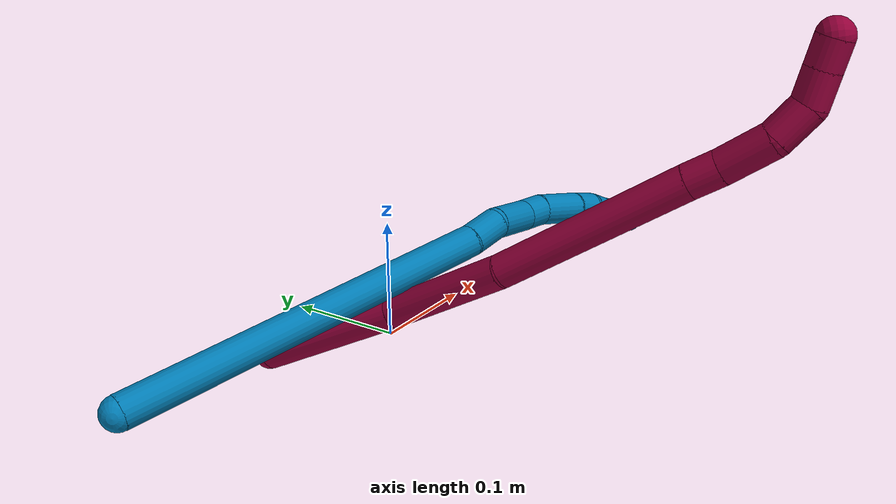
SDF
<sdf version="1.7">
 <world name="default">
  <model name="8">
   <static>0</static>
   <link name="8">
    <collision name="collision-cylinder-e_1_1_4">
     <pose>0.007901 -0.018923 0.056014 0.325794 0.132845 0.021865</pose>
     <geometry><cylinder><radius>0.0125</radius><length>0.119299</length></cylinder></geometry>
     <surface>
      <friction><ode><mu>1.16</mu><mu2>1.16</mu2><slip1>0</slip1><slip2>0</slip2></ode></friction>
      <contact><ode><kp>1e+06</kp><kd>1</kd><max_vel>0</max_vel><min_depth>0.001</min_depth></ode></contact>
     </surface>
    </collision>
    <visual name="visual-cylinder-e_1_1_4">
     <pose>0.007901 -0.018923 0.056014 0.325794 0.132845 0.021865</pose>
     <geometry><cylinder><radius>0.0125</radius><length>0.119299</length></cylinder></geometry>
     <material><ambient>0.584314 0 0.227451 1</ambient></material>
    </visual>
    <collision name="collision-cylinder-e_2_4_5">
     <pose>0.027688 -0.058317 0.157578 0.422361 0.233661 0.05031</pose>
     <geometry><cylinder><radius>0.0125</radius><length>0.102668</length></cylinder></geometry>
     <surface>
      <friction><ode><mu>1.16</mu><mu2>1.16</mu2><slip1>0</slip1><slip2>0</slip2></ode></friction>
      <contact><ode><kp>1e+06</kp><kd>1</kd><max_vel>0</max_vel><min_depth>0.001</min_depth></ode></contact>
     </surface>
    </collision>
    <visual name="visual-cylinder-e_2_4_5">
     <pose>0.027688 -0.058317 0.157578 0.422361 0.233661 0.05031</pose>
     <geometry><cylinder><radius>0.0125</radius><length>0.102668</length></cylinder></geometry>
     <material><ambient>0.584314 0 0.227451 1</ambient></material>
    </visual>
    <collision name="collision-cylinder-e_3_5_6">
     <pose>0.043498 -0.107573 0.269614 0.408588 0.054116 0.011215</pose>
     <geometry><cylinder><radius>0.0125</radius><length>0.14511</length></cylinder></geometry>
     <surface>
      <friction><ode><mu>1.16</mu><mu2>1.16</mu2><slip1>0</slip1><slip2>0</slip2></ode></friction>
      <contact><ode><kp>1e+06</kp><kd>1</kd><max_vel>0</max_vel><min_depth>0.001</min_depth></ode></contact>
     </surface>
    </collision>
    <visual name="visual-cylinder-e_3_5_6">
     <pose>0.043498 -0.107573 0.269614 0.408588 0.054116 0.011215</pose>
     <geometry><cylinder><radius>0.0125</radius><length>0.14511</length></cylinder></geometry>
     <material><ambient>0.584314 0 0.227451 1</ambient></material>
    </visual>
    <collision name="collision-cylinder-e_4_6_7">
     <pose>0.048104 -0.140594 0.346813 0.376504 0.05911 0.011264</pose>
     <geometry><cylinder><radius>0.0125</radius><length>0.023083</length></cylinder></geometry>
     <surface>
      <friction><ode><mu>1.16</mu><mu2>1.16</mu2><slip1>0</slip1><slip2>0</slip2></ode></friction>
      <contact><ode><kp>1e+06</kp><kd>1</kd><max_vel>0</max_vel><min_depth>0.001</min_depth></ode></contact>
     </surface>
    </collision>
    <visual name="visual-cylinder-e_4_6_7">
     <pose>0.048104 -0.140594 0.346813 0.376504 0.05911 0.011264</pose>
     <geometry><cylinder><radius>0.0125</radius><length>0.023083</length></cylinder></geometry>
     <material><ambient>0.584314 0 0.227451 1</ambient></material>
    </visual>
    <collision name="collision-cylinder-e_5_7_8">
     <pose>0.050901 -0.153466 0.374109 0.48015 0.11264 0.027601</pose>
     <geometry><cylinder><radius>0.0125</radius><length>0.03763</length></cylinder></geometry>
     <surface>
      <friction><ode><mu>1.16</mu><mu2>1.16</mu2><slip1>0</slip1><slip2>0</slip2></ode></friction>
      <contact><ode><kp>1e+06</kp><kd>1</kd><max_vel>0</max_vel><min_depth>0.001</min_depth></ode></contact>
     </surface>
    </collision>
    <visual name="visual-cylinder-e_5_7_8">
     <pose>0.050901 -0.153466 0.374109 0.48015 0.11264 0.027601</pose>
     <geometry><cylinder><radius>0.0125</radius><length>0.03763</length></cylinder></geometry>
     <material><ambient>0.584314 0 0.227451 1</ambient></material>
    </visual>
    <collision name="collision-cylinder-e_6_8_9">
     <pose>0.050524 -0.170542 0.4016 0.658469 -0.17871 -0.061204</pose>
     <geometry><cylinder><radius>0.0125</radius><length>0.028032</length></cylinder></geometry>
     <surface>
      <friction><ode><mu>1.16</mu><mu2>1.16</mu2><slip1>0</slip1><slip2>0</slip2></ode></friction>
      <contact><ode><kp>1e+06</kp><kd>1</kd><max_vel>0</max_vel><min_depth>0.001</min_depth></ode></contact>
     </surface>
    </collision>
    <visual name="visual-cylinder-e_6_8_9">
     <pose>0.050524 -0.170542 0.4016 0.658469 -0.17871 -0.061204</pose>
     <geometry><cylinder><radius>0.0125</radius><length>0.028032</length></cylinder></geometry>
     <material><ambient>0.584314 0 0.227451 1</ambient></material>
    </visual>
    <collision name="collision-cylinder-e_7_9_10">
     <pose>0.045487 -0.189525 0.41729 1.14511 -0.216442 -0.139834</pose>
     <geometry><cylinder><radius>0.0125</radius><length>0.023706</length></cylinder></geometry>
     <surface>
      <friction><ode><mu>1.16</mu><mu2>1.16</mu2><slip1>0</slip1><slip2>0</slip2></ode></friction>
      <contact><ode><kp>1e+06</kp><kd>1</kd><max_vel>0</max_vel><min_depth>0.001</min_depth></ode></contact>
     </surface>
    </collision>
    <visual name="visual-cylinder-e_7_9_10">
     <pose>0.045487 -0.189525 0.41729 1.14511 -0.216442 -0.139834</pose>
     <geometry><cylinder><radius>0.0125</radius><length>0.023706</length></cylinder></geometry>
     <material><ambient>0.584314 0 0.227451 1</ambient></material>
    </visual>
    <collision name="collision-cylinder-e_8_10_2">
     <pose>0.041127 -0.209283 0.42614 1.15491 -0.17823 -0.116301</pose>
     <geometry><cylinder><radius>0.0125</radius><length>0.020472</length></cylinder></geometry>
     <surface>
      <friction><ode><mu>1.16</mu><mu2>1.16</mu2><slip1>0</slip1><slip2>0</slip2></ode></friction>
      <contact><ode><kp>1e+06</kp><kd>1</kd><max_vel>0</max_vel><min_depth>0.001</min_depth></ode></contact>
     </surface>
    </collision>
    <visual name="visual-cylinder-e_8_10_2">
     <pose>0.041127 -0.209283 0.42614 1.15491 -0.17823 -0.116301</pose>
     <geometry><cylinder><radius>0.0125</radius><length>0.020472</length></cylinder></geometry>
     <material><ambient>0.584314 0 0.227451 1</ambient></material>
    </visual>
    <collision name="collision-sphere-2">
     <pose>0.039312 -0.218498 0.43021 0 -0 0</pose>
     <geometry><sphere><radius>0.0125</radius></sphere></geometry>
     <surface>
      <friction><ode><mu>1.16</mu><mu2>1.16</mu2><slip1>0</slip1><slip2>0</slip2></ode></friction>
      <contact><ode><kp>1e+06</kp><kd>1</kd><max_vel>0</max_vel><min_depth>0.001</min_depth></ode></contact>
     </surface>
    </collision>
    <visual name="visual-sphere-2">
     <pose>0.039312 -0.218498 0.43021 0 -0 0</pose>
     <geometry><sphere><radius>0.0125</radius></sphere></geometry>
     <material><ambient>0.584314 0 0.227451 1</ambient></material>
    </visual>
    <collision name="collision-sphere-10">
     <pose>0.042942 -0.200068 0.42207 0 -0 0</pose>
     <geometry><sphere><radius>0.0125</radius></sphere></geometry>
     <surface>
      <friction><ode><mu>1.16</mu><mu2>1.16</mu2><slip1>0</slip1><slip2>0</slip2></ode></friction>
      <contact><ode><kp>1e+06</kp><kd>1</kd><max_vel>0</max_vel><min_depth>0.001</min_depth></ode></contact>
     </surface>
    </collision>
    <visual name="visual-sphere-10">
     <pose>0.042942 -0.200068 0.42207 0 -0 0</pose>
     <geometry><sphere><radius>0.0125</radius></sphere></geometry>
     <material><ambient>0.584314 0 0.227451 1</ambient></material>
    </visual>
    <collision name="collision-sphere-9">
     <pose>0.048033 -0.178981 0.412509 0 -0 0</pose>
     <geometry><sphere><radius>0.0125</radius></sphere></geometry>
     <surface>
      <friction><ode><mu>1.16</mu><mu2>1.16</mu2><slip1>0</slip1><slip2>0</slip2></ode></friction>
      <contact><ode><kp>1e+06</kp><kd>1</kd><max_vel>0</max_vel><min_depth>0.001</min_depth></ode></contact>
     </surface>
    </collision>
    <visual name="visual-sphere-9">
     <pose>0.048033 -0.178981 0.412509 0 -0 0</pose>
     <geometry><sphere><radius>0.0125</radius></sphere></geometry>
     <material><ambient>0.584314 0 0.227451 1</ambient></material>
    </visual>
    <collision name="collision-sphere-4">
     <pose>0.015802 -0.037847 0.112028 0 -0 0</pose>
     <geometry><sphere><radius>0.0125</radius></sphere></geometry>
     <surface>
      <friction><ode><mu>1.16</mu><mu2>1.16</mu2><slip1>0</slip1><slip2>0</slip2></ode></friction>
      <contact><ode><kp>1e+06</kp><kd>1</kd><max_vel>0</max_vel><min_depth>0.001</min_depth></ode></contact>
     </surface>
    </collision>
    <visual name="visual-sphere-4">
     <pose>0.015802 -0.037847 0.112028 0 -0 0</pose>
     <geometry><sphere><radius>0.0125</radius></sphere></geometry>
     <material><ambient>0.584314 0 0.227451 1</ambient></material>
    </visual>
    <collision name="collision-sphere-1">
     <geometry><sphere><radius>0.0125</radius></sphere></geometry>
     <surface>
      <friction><ode><mu>1.16</mu><mu2>1.16</mu2><slip1>0</slip1><slip2>0</slip2></ode></friction>
      <contact><ode><kp>1e+06</kp><kd>1</kd><max_vel>0</max_vel><min_depth>0.001</min_depth></ode></contact>
     </surface>
    </collision>
    <visual name="visual-sphere-1">
     <geometry><sphere><radius>0.0125</radius></sphere></geometry>
     <material><ambient>0.584314 0 0.227451 1</ambient></material>
    </visual>
    <collision name="collision-sphere-8">
     <pose>0.053016 -0.162102 0.390691 0 -0 0</pose>
     <geometry><sphere><radius>0.0125</radius></sphere></geometry>
     <surface>
      <friction><ode><mu>1.16</mu><mu2>1.16</mu2><slip1>0</slip1><slip2>0</slip2></ode></friction>
      <contact><ode><kp>1e+06</kp><kd>1</kd><max_vel>0</max_vel><min_depth>0.001</min_depth></ode></contact>
     </surface>
    </collision>
    <visual name="visual-sphere-8">
     <pose>0.053016 -0.162102 0.390691 0 -0 0</pose>
     <geometry><sphere><radius>0.0125</radius></sphere></geometry>
     <material><ambient>0.584314 0 0.227451 1</ambient></material>
    </visual>
    <collision name="collision-sphere-5">
     <pose>0.039573 -0.078788 0.203129 0 -0 0</pose>
     <geometry><sphere><radius>0.0125</radius></sphere></geometry>
     <surface>
      <friction><ode><mu>1.16</mu><mu2>1.16</mu2><slip1>0</slip1><slip2>0</slip2></ode></friction>
      <contact><ode><kp>1e+06</kp><kd>1</kd><max_vel>0</max_vel><min_depth>0.001</min_depth></ode></contact>
     </surface>
    </collision>
    <visual name="visual-sphere-5">
     <pose>0.039573 -0.078788 0.203129 0 -0 0</pose>
     <geometry><sphere><radius>0.0125</radius></sphere></geometry>
     <material><ambient>0.584314 0 0.227451 1</ambient></material>
    </visual>
    <collision name="collision-sphere-6">
     <pose>0.047422 -0.136358 0.336099 0 -0 0</pose>
     <geometry><sphere><radius>0.0125</radius></sphere></geometry>
     <surface>
      <friction><ode><mu>1.16</mu><mu2>1.16</mu2><slip1>0</slip1><slip2>0</slip2></ode></friction>
      <contact><ode><kp>1e+06</kp><kd>1</kd><max_vel>0</max_vel><min_depth>0.001</min_depth></ode></contact>
     </surface>
    </collision>
    <visual name="visual-sphere-6">
     <pose>0.047422 -0.136358 0.336099 0 -0 0</pose>
     <geometry><sphere><radius>0.0125</radius></sphere></geometry>
     <material><ambient>0.584314 0 0.227451 1</ambient></material>
    </visual>
    <collision name="collision-sphere-7">
     <pose>0.048786 -0.14483 0.357527 0 -0 0</pose>
     <geometry><sphere><radius>0.0125</radius></sphere></geometry>
     <surface>
      <friction><ode><mu>1.16</mu><mu2>1.16</mu2><slip1>0</slip1><slip2>0</slip2></ode></friction>
      <contact><ode><kp>1e+06</kp><kd>1</kd><max_vel>0</max_vel><min_depth>0.001</min_depth></ode></contact>
     </surface>
    </collision>
    <visual name="visual-sphere-7">
     <pose>0.048786 -0.14483 0.357527 0 -0 0</pose>
     <geometry><sphere><radius>0.0125</radius></sphere></geometry>
     <material><ambient>0.584314 0 0.227451 1</ambient></material>
    </visual>
    <inertial>
     <pose>0.032919 -0.092866 0.227883 0 -0 0</pose>
     <mass>0.5</mass>
     <inertia>
      <ixx>0.000524</ixx>
      <ixy>0</ixy>
      <ixz>0</ixz>
      <iyy>0.000468</iyy>
      <iyz>0</iyz>
      <izz>0.000174</izz>
     </inertia>
    </inertial>
   </link>
   <pose>-0.100284 0.043154 0.012477 -1.40139 0.172818 -2.66062</pose>
  </model>
  <model name="9">
   <static>0</static>
   <link name="9">
    <collision name="collision-cylinder-e_1_1_4">
     <pose>0.093597 0.072361 -0.084189 -2.4316 0.70048 -1.55613</pose>
     <geometry><cylinder><radius>0.0125</radius><length>0.290409</length></cylinder></geometry>
     <surface>
      <friction><ode><mu>1.16</mu><mu2>1.16</mu2><slip1>0</slip1><slip2>0</slip2></ode></friction>
      <contact><ode><kp>1e+06</kp><kd>1</kd><max_vel>0</max_vel><min_depth>0.001</min_depth></ode></contact>
     </surface>
    </collision>
    <visual name="visual-cylinder-e_1_1_4">
     <pose>0.093597 0.072361 -0.084189 -2.4316 0.70048 -1.55613</pose>
     <geometry><cylinder><radius>0.0125</radius><length>0.290409</length></cylinder></geometry>
     <material><ambient>0 0.490196 0.709804 1</ambient></material>
    </visual>
    <collision name="collision-cylinder-e_2_4_5">
     <pose>0.19493 0.152686 -0.178176 -2.45907 0.549746 -1.34221</pose>
     <geometry><cylinder><radius>0.0125</radius><length>0.029615</length></cylinder></geometry>
     <surface>
      <friction><ode><mu>1.16</mu><mu2>1.16</mu2><slip1>0</slip1><slip2>0</slip2></ode></friction>
      <contact><ode><kp>1e+06</kp><kd>1</kd><max_vel>0</max_vel><min_depth>0.001</min_depth></ode></contact>
     </surface>
    </collision>
    <visual name="visual-cylinder-e_2_4_5">
     <pose>0.19493 0.152686 -0.178176 -2.45907 0.549746 -1.34221</pose>
     <geometry><cylinder><radius>0.0125</radius><length>0.029615</length></cylinder></geometry>
     <material><ambient>0 0.490196 0.709804 1</ambient></material>
    </visual>
    <collision name="collision-cylinder-e_3_5_6">
     <pose>0.213509 0.164864 -0.204152 -2.88678 0.575374 -2.32447</pose>
     <geometry><cylinder><radius>0.0125</radius><length>0.039853</length></cylinder></geometry>
     <surface>
      <friction><ode><mu>1.16</mu><mu2>1.16</mu2><slip1>0</slip1><slip2>0</slip2></ode></friction>
      <contact><ode><kp>1e+06</kp><kd>1</kd><max_vel>0</max_vel><min_depth>0.001</min_depth></ode></contact>
     </surface>
    </collision>
    <visual name="visual-cylinder-e_3_5_6">
     <pose>0.213509 0.164864 -0.204152 -2.88678 0.575374 -2.32447</pose>
     <geometry><cylinder><radius>0.0125</radius><length>0.039853</length></cylinder></geometry>
     <material><ambient>0 0.490196 0.709804 1</ambient></material>
    </visual>
    <collision name="collision-cylinder-e_4_6_7">
     <pose>0.230871 0.172675 -0.227128 -2.65498 0.703151 -1.95176</pose>
     <geometry><cylinder><radius>0.0125</radius><length>0.020163</length></cylinder></geometry>
     <surface>
      <friction><ode><mu>1.16</mu><mu2>1.16</mu2><slip1>0</slip1><slip2>0</slip2></ode></friction>
      <contact><ode><kp>1e+06</kp><kd>1</kd><max_vel>0</max_vel><min_depth>0.001</min_depth></ode></contact>
     </surface>
    </collision>
    <visual name="visual-cylinder-e_4_6_7">
     <pose>0.230871 0.172675 -0.227128 -2.65498 0.703151 -1.95176</pose>
     <geometry><cylinder><radius>0.0125</radius><length>0.020163</length></cylinder></geometry>
     <material><ambient>0 0.490196 0.709804 1</ambient></material>
    </visual>
    <collision name="collision-cylinder-e_5_7_8">
     <pose>0.252305 0.180229 -0.246072 -2.82655 0.862522 -2.47684</pose>
     <geometry><cylinder><radius>0.0125</radius><length>0.039276</length></cylinder></geometry>
     <surface>
      <friction><ode><mu>1.16</mu><mu2>1.16</mu2><slip1>0</slip1><slip2>0</slip2></ode></friction>
      <contact><ode><kp>1e+06</kp><kd>1</kd><max_vel>0</max_vel><min_depth>0.001</min_depth></ode></contact>
     </surface>
    </collision>
    <visual name="visual-cylinder-e_5_7_8">
     <pose>0.252305 0.180229 -0.246072 -2.82655 0.862522 -2.47684</pose>
     <geometry><cylinder><radius>0.0125</radius><length>0.039276</length></cylinder></geometry>
     <material><ambient>0 0.490196 0.709804 1</ambient></material>
    </visual>
    <collision name="collision-cylinder-e_6_8_9">
     <pose>0.274763 0.185546 -0.265159 -2.94834 0.817584 -2.70133</pose>
     <geometry><cylinder><radius>0.0125</radius><length>0.020681</length></cylinder></geometry>
     <surface>
      <friction><ode><mu>1.16</mu><mu2>1.16</mu2><slip1>0</slip1><slip2>0</slip2></ode></friction>
      <contact><ode><kp>1e+06</kp><kd>1</kd><max_vel>0</max_vel><min_depth>0.001</min_depth></ode></contact>
     </surface>
    </collision>
    <visual name="visual-cylinder-e_6_8_9">
     <pose>0.274763 0.185546 -0.265159 -2.94834 0.817584 -2.70133</pose>
     <geometry><cylinder><radius>0.0125</radius><length>0.020681</length></cylinder></geometry>
     <material><ambient>0 0.490196 0.709804 1</ambient></material>
    </visual>
    <collision name="collision-cylinder-e_7_9_10">
     <pose>0.288865 0.186008 -0.279596 3.02261 0.715282 2.8255</pose>
     <geometry><cylinder><radius>0.0125</radius><length>0.020002</length></cylinder></geometry>
     <surface>
      <friction><ode><mu>1.16</mu><mu2>1.16</mu2><slip1>0</slip1><slip2>0</slip2></ode></friction>
      <contact><ode><kp>1e+06</kp><kd>1</kd><max_vel>0</max_vel><min_depth>0.001</min_depth></ode></contact>
     </surface>
    </collision>
    <visual name="visual-cylinder-e_7_9_10">
     <pose>0.288865 0.186008 -0.279596 3.02261 0.715282 2.8255</pose>
     <geometry><cylinder><radius>0.0125</radius><length>0.020002</length></cylinder></geometry>
     <material><ambient>0 0.490196 0.709804 1</ambient></material>
    </visual>
    <collision name="collision-cylinder-e_8_10_11">
     <pose>0.302941 0.185436 -0.293682 -3.09245 0.850477 -3.03316</pose>
     <geometry><cylinder><radius>0.0125</radius><length>0.02</length></cylinder></geometry>
     <surface>
      <friction><ode><mu>1.16</mu><mu2>1.16</mu2><slip1>0</slip1><slip2>0</slip2></ode></friction>
      <contact><ode><kp>1e+06</kp><kd>1</kd><max_vel>0</max_vel><min_depth>0.001</min_depth></ode></contact>
     </surface>
    </collision>
    <visual name="visual-cylinder-e_8_10_11">
     <pose>0.302941 0.185436 -0.293682 -3.09245 0.850477 -3.03316</pose>
     <geometry><cylinder><radius>0.0125</radius><length>0.02</length></cylinder></geometry>
     <material><ambient>0 0.490196 0.709804 1</ambient></material>
    </visual>
    <collision name="collision-cylinder-e_9_11_2">
     <pose>0.317437 0.185355 -0.30742 3.08498 0.772562 3.00257</pose>
     <geometry><cylinder><radius>0.0125</radius><length>0.02</length></cylinder></geometry>
     <surface>
      <friction><ode><mu>1.16</mu><mu2>1.16</mu2><slip1>0</slip1><slip2>0</slip2></ode></friction>
      <contact><ode><kp>1e+06</kp><kd>1</kd><max_vel>0</max_vel><min_depth>0.001</min_depth></ode></contact>
     </surface>
    </collision>
    <visual name="visual-cylinder-e_9_11_2">
     <pose>0.317437 0.185355 -0.30742 3.08498 0.772562 3.00257</pose>
     <geometry><cylinder><radius>0.0125</radius><length>0.02</length></cylinder></geometry>
     <material><ambient>0 0.490196 0.709804 1</ambient></material>
    </visual>
    <collision name="collision-sphere-2">
     <pose>0.324416 0.18495 -0.31457 0 -0 0</pose>
     <geometry><sphere><radius>0.0125</radius></sphere></geometry>
     <surface>
      <friction><ode><mu>1.16</mu><mu2>1.16</mu2><slip1>0</slip1><slip2>0</slip2></ode></friction>
      <contact><ode><kp>1e+06</kp><kd>1</kd><max_vel>0</max_vel><min_depth>0.001</min_depth></ode></contact>
     </surface>
    </collision>
    <visual name="visual-sphere-2">
     <pose>0.324416 0.18495 -0.31457 0 -0 0</pose>
     <geometry><sphere><radius>0.0125</radius></sphere></geometry>
     <material><ambient>0 0.490196 0.709804 1</ambient></material>
    </visual>
    <collision name="collision-sphere-11">
     <pose>0.310457 0.18576 -0.30027 0 -0 0</pose>
     <geometry><sphere><radius>0.0125</radius></sphere></geometry>
     <surface>
      <friction><ode><mu>1.16</mu><mu2>1.16</mu2><slip1>0</slip1><slip2>0</slip2></ode></friction>
      <contact><ode><kp>1e+06</kp><kd>1</kd><max_vel>0</max_vel><min_depth>0.001</min_depth></ode></contact>
     </surface>
    </collision>
    <visual name="visual-sphere-11">
     <pose>0.310457 0.18576 -0.30027 0 -0 0</pose>
     <geometry><sphere><radius>0.0125</radius></sphere></geometry>
     <material><ambient>0 0.490196 0.709804 1</ambient></material>
    </visual>
    <collision name="collision-sphere-10">
     <pose>0.295425 0.185112 -0.287093 0 -0 0</pose>
     <geometry><sphere><radius>0.0125</radius></sphere></geometry>
     <surface>
      <friction><ode><mu>1.16</mu><mu2>1.16</mu2><slip1>0</slip1><slip2>0</slip2></ode></friction>
      <contact><ode><kp>1e+06</kp><kd>1</kd><max_vel>0</max_vel><min_depth>0.001</min_depth></ode></contact>
     </surface>
    </collision>
    <visual name="visual-sphere-10">
     <pose>0.295425 0.185112 -0.287093 0 -0 0</pose>
     <geometry><sphere><radius>0.0125</radius></sphere></geometry>
     <material><ambient>0 0.490196 0.709804 1</ambient></material>
    </visual>
    <collision name="collision-sphere-9">
     <pose>0.282306 0.186904 -0.2721 0 -0 0</pose>
     <geometry><sphere><radius>0.0125</radius></sphere></geometry>
     <surface>
      <friction><ode><mu>1.16</mu><mu2>1.16</mu2><slip1>0</slip1><slip2>0</slip2></ode></friction>
      <contact><ode><kp>1e+06</kp><kd>1</kd><max_vel>0</max_vel><min_depth>0.001</min_depth></ode></contact>
     </surface>
    </collision>
    <visual name="visual-sphere-9">
     <pose>0.282306 0.186904 -0.2721 0 -0 0</pose>
     <geometry><sphere><radius>0.0125</radius></sphere></geometry>
     <material><ambient>0 0.490196 0.709804 1</ambient></material>
    </visual>
    <collision name="collision-sphere-4">
     <pose>0.187193 0.144723 -0.168378 0 -0 0</pose>
     <geometry><sphere><radius>0.0125</radius></sphere></geometry>
     <surface>
      <friction><ode><mu>1.16</mu><mu2>1.16</mu2><slip1>0</slip1><slip2>0</slip2></ode></friction>
      <contact><ode><kp>1e+06</kp><kd>1</kd><max_vel>0</max_vel><min_depth>0.001</min_depth></ode></contact>
     </surface>
    </collision>
    <visual name="visual-sphere-4">
     <pose>0.187193 0.144723 -0.168378 0 -0 0</pose>
     <geometry><sphere><radius>0.0125</radius></sphere></geometry>
     <material><ambient>0 0.490196 0.709804 1</ambient></material>
    </visual>
    <collision name="collision-sphere-1">
     <geometry><sphere><radius>0.0125</radius></sphere></geometry>
     <surface>
      <friction><ode><mu>1.16</mu><mu2>1.16</mu2><slip1>0</slip1><slip2>0</slip2></ode></friction>
      <contact><ode><kp>1e+06</kp><kd>1</kd><max_vel>0</max_vel><min_depth>0.001</min_depth></ode></contact>
     </surface>
    </collision>
    <visual name="visual-sphere-1">
     <geometry><sphere><radius>0.0125</radius></sphere></geometry>
     <material><ambient>0 0.490196 0.709804 1</ambient></material>
    </visual>
    <collision name="collision-sphere-8">
     <pose>0.26722 0.184188 -0.258218 0 -0 0</pose>
     <geometry><sphere><radius>0.0125</radius></sphere></geometry>
     <surface>
      <friction><ode><mu>1.16</mu><mu2>1.16</mu2><slip1>0</slip1><slip2>0</slip2></ode></friction>
      <contact><ode><kp>1e+06</kp><kd>1</kd><max_vel>0</max_vel><min_depth>0.001</min_depth></ode></contact>
     </surface>
    </collision>
    <visual name="visual-sphere-8">
     <pose>0.26722 0.184188 -0.258218 0 -0 0</pose>
     <geometry><sphere><radius>0.0125</radius></sphere></geometry>
     <material><ambient>0 0.490196 0.709804 1</ambient></material>
    </visual>
    <collision name="collision-sphere-5">
     <pose>0.202666 0.16065 -0.187973 0 -0 0</pose>
     <geometry><sphere><radius>0.0125</radius></sphere></geometry>
     <surface>
      <friction><ode><mu>1.16</mu><mu2>1.16</mu2><slip1>0</slip1><slip2>0</slip2></ode></friction>
      <contact><ode><kp>1e+06</kp><kd>1</kd><max_vel>0</max_vel><min_depth>0.001</min_depth></ode></contact>
     </surface>
    </collision>
    <visual name="visual-sphere-5">
     <pose>0.202666 0.16065 -0.187973 0 -0 0</pose>
     <geometry><sphere><radius>0.0125</radius></sphere></geometry>
     <material><ambient>0 0.490196 0.709804 1</ambient></material>
    </visual>
    <collision name="collision-sphere-6">
     <pose>0.224352 0.169078 -0.22033 0 -0 0</pose>
     <geometry><sphere><radius>0.0125</radius></sphere></geometry>
     <surface>
      <friction><ode><mu>1.16</mu><mu2>1.16</mu2><slip1>0</slip1><slip2>0</slip2></ode></friction>
      <contact><ode><kp>1e+06</kp><kd>1</kd><max_vel>0</max_vel><min_depth>0.001</min_depth></ode></contact>
     </surface>
    </collision>
    <visual name="visual-sphere-6">
     <pose>0.224352 0.169078 -0.22033 0 -0 0</pose>
     <geometry><sphere><radius>0.0125</radius></sphere></geometry>
     <material><ambient>0 0.490196 0.709804 1</ambient></material>
    </visual>
    <collision name="collision-sphere-7">
     <pose>0.23739 0.176271 -0.233925 0 -0 0</pose>
     <geometry><sphere><radius>0.0125</radius></sphere></geometry>
     <surface>
      <friction><ode><mu>1.16</mu><mu2>1.16</mu2><slip1>0</slip1><slip2>0</slip2></ode></friction>
      <contact><ode><kp>1e+06</kp><kd>1</kd><max_vel>0</max_vel><min_depth>0.001</min_depth></ode></contact>
     </surface>
    </collision>
    <visual name="visual-sphere-7">
     <pose>0.23739 0.176271 -0.233925 0 -0 0</pose>
     <geometry><sphere><radius>0.0125</radius></sphere></geometry>
     <material><ambient>0 0.490196 0.709804 1</ambient></material>
    </visual>
    <inertial>
     <pose>0.159792 0.115281 -0.15041 0 -0 0</pose>
     <mass>0.5</mass>
     <inertia>
      <ixx>-0.001542</ixx>
      <ixy>0</ixy>
      <ixz>0</ixz>
      <iyy>-0.000708</iyy>
      <iyz>0</iyz>
      <izz>-0.002391</izz>
     </inertia>
    </inertial>
   </link>
   <pose>-0.283605 -0.002814 0.062212 1.35568 0.301155 -1.04992</pose>
  </model>
 </world>
</sdf>
